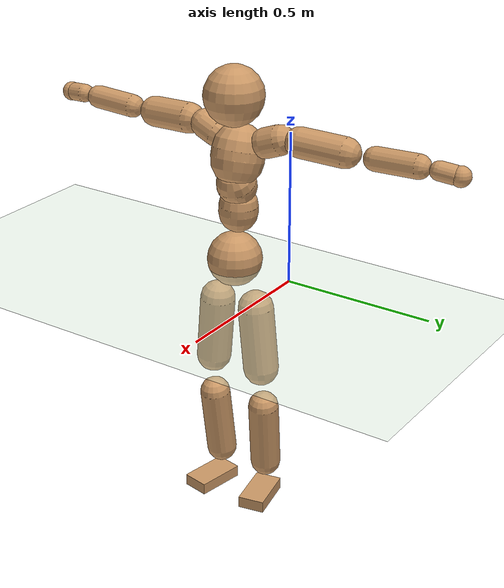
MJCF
<mujoco model="humanoid">
  <compiler coordinate="local"/>
  <default>
    <joint damping="0.0" armature="0.01" stiffness="0.0" limited="true"/>
    <geom conaffinity="1" condim="3" contype="7" margin="0.001" rgba="0.8 0.6 .4 1"/>
  </default>
  <asset>
    <texture type="skybox" builtin="gradient" rgb1=".4 .5 .6" rgb2="0 0 0" width="100" height="100"/>
    <texture builtin="flat" height="1278" mark="cross" markrgb="1 1 1" name="texgeom" random="0.01" rgb1="0.8 0.6 0.4" rgb2="0.8 0.6 0.4" type="cube" width="127"/>
    <texture builtin="checker" height="100" name="texplane" rgb1="0 0 0" rgb2="0.8 0.8 0.8" type="2d" width="100"/>
    <material name="MatPlane" reflectance="0.5" shininess="1" specular="1" texrepeat="60 60" texture="texplane"/>
    <material name="geom" texture="texgeom" texuniform="true"/>
  </asset>
  <worldbody>
    <light cutoff="100" diffuse="1 1 1" dir="-0 0 -1.3" directional="true" exponent="1" pos="0 0 1.3" specular=".1 .1 .1"/>
    <geom conaffinity="1" condim="3" name="floor" pos="0 0 0" rgba="0.8 0.9 0.8 1" size="100 100 .2" type="plane" material="MatPlane"/>
    <body name="Pelvis" pos="-0.0013 -0.2101 0.0272">
      <freejoint name="Pelvis"/>
      <geom type="sphere" contype="1" conaffinity="1" density="500" size="0.0917" pos="0.0000 0.0000 0.0000" name="Pelvis"/>
      <body name="L_Hip" pos="-0.0082 0.0698 -0.0897">
        <joint name="L_Hip_x" type="hinge" pos="0 0 0" axis="1 0 0" stiffness="800" damping="80" armature="0.02" range="-180.0000 180.0000"/>
        <joint name="L_Hip_y" type="hinge" pos="0 0 0" axis="0 1 0" stiffness="800" damping="80" armature="0.02" range="-180.0000 180.0000"/>
        <joint name="L_Hip_z" type="hinge" pos="0 0 0" axis="0 0 1" stiffness="800" damping="80" armature="0.02" range="-180.0000 180.0000"/>
        <geom type="capsule" contype="1" conaffinity="1" density="500" fromto="-0.0013 0.0064 -0.0742 -0.0052 0.0257 -0.2970" size="0.0598" name="L_Hip"/>
        <body name="L_Knee" pos="-0.0065 0.0321 -0.3712">
          <joint name="L_Knee_x" type="hinge" pos="0 0 0" axis="1 0 0" stiffness="800" damping="80" armature="0.02" range="-180.0000 180.0000"/>
          <joint name="L_Knee_y" type="hinge" pos="0 0 0" axis="0 1 0" stiffness="800" damping="80" armature="0.02" range="-180.0000 180.0000"/>
          <joint name="L_Knee_z" type="hinge" pos="0 0 0" axis="0 0 1" stiffness="800" damping="80" armature="0.02" range="-180.0000 180.0000"/>
          <geom type="capsule" contype="1" conaffinity="1" density="500" fromto="-0.0086 -0.0024 -0.0786 -0.0345 -0.0095 -0.3145" size="0.0521" name="L_Knee"/>
          <body name="L_Ankle" pos="-0.0431 -0.0119 -0.3931">
            <joint name="L_Ankle_x" type="hinge" pos="0 0 0" axis="1 0 0" stiffness="800" damping="80" armature="0.02" range="-180.0000 180.0000"/>
            <joint name="L_Ankle_y" type="hinge" pos="0 0 0" axis="0 1 0" stiffness="800" damping="80" armature="0.02" range="-180.0000 180.0000"/>
            <joint name="L_Ankle_z" type="hinge" pos="0 0 0" axis="0 0 1" stiffness="800" damping="80" armature="0.02" range="-180.0000 180.0000"/>
            <geom type="box" contype="1" conaffinity="1" density="500" pos="0.0579 0.0116 -0.0280" size="0.0826 0.0453 0.0204" quat="0.9951 0.0000 0.0000 0.0986" name="L_Ankle"/>
            <body name="L_Toe" pos="0.1158 0.0232 -0.056">
              <joint name="L_Toe_x" type="hinge" pos="0 0 0" axis="1 0 0" stiffness="500" damping="50" armature="0.02" range="-180.0000 180.0000"/>
              <joint name="L_Toe_y" type="hinge" pos="0 0 0" axis="0 1 0" stiffness="500" damping="50" armature="0.02" range="-180.0000 180.0000"/>
              <joint name="L_Toe_z" type="hinge" pos="0 0 0" axis="0 0 1" stiffness="500" damping="50" armature="0.02" range="-180.0000 180.0000"/>
              <geom type="box" contype="1" conaffinity="1" density="500" pos="0.0000 0.0000 0.0273" size="0.0009 0.0023 0.001" quat="0.9945 0.0000 0.0000 0.1051" name="L_Toe"/>
            </body>
          </body>
        </body>
      </body>
      <body name="R_Hip" pos="-0.0046 -0.0675 -0.0892">
        <joint name="R_Hip_x" type="hinge" pos="0 0 0" axis="1 0 0" stiffness="800" damping="80" armature="0.02" range="-180.0000 180.0000"/>
        <joint name="R_Hip_y" type="hinge" pos="0 0 0" axis="0 1 0" stiffness="800" damping="80" armature="0.02" range="-180.0000 180.0000"/>
        <joint name="R_Hip_z" type="hinge" pos="0 0 0" axis="0 0 1" stiffness="800" damping="80" armature="0.02" range="-180.0000 180.0000"/>
        <geom type="capsule" contype="1" conaffinity="1" density="500" fromto="-0.0018 -0.0076 -0.0755 -0.0071 -0.0302 -0.3019" size="0.0591" name="R_Hip"/>
        <body name="R_Knee" pos="-0.0089 -0.0378 -0.3774">
          <joint name="R_Knee_x" type="hinge" pos="0 0 0" axis="1 0 0" stiffness="800" damping="80" armature="0.02" range="-180.0000 180.0000"/>
          <joint name="R_Knee_y" type="hinge" pos="0 0 0" axis="0 1 0" stiffness="800" damping="80" armature="0.02" range="-180.0000 180.0000"/>
          <joint name="R_Knee_z" type="hinge" pos="0 0 0" axis="0 0 1" stiffness="800" damping="80" armature="0.02" range="-180.0000 180.0000"/>
          <geom type="capsule" contype="1" conaffinity="1" density="500" fromto="-0.0083 0.0029 -0.0787 -0.0331 0.0116 -0.3146" size="0.0523" name="R_Knee"/>
          <body name="R_Ankle" pos="-0.0414 0.0145 -0.3933">
            <joint name="R_Ankle_x" type="hinge" pos="0 0 0" axis="1 0 0" stiffness="800" damping="80" armature="0.02" range="-180.0000 180.0000"/>
            <joint name="R_Ankle_y" type="hinge" pos="0 0 0" axis="0 1 0" stiffness="800" damping="80" armature="0.02" range="-180.0000 180.0000"/>
            <joint name="R_Ankle_z" type="hinge" pos="0 0 0" axis="0 0 1" stiffness="800" damping="80" armature="0.02" range="-180.0000 180.0000"/>
            <geom type="box" contype="1" conaffinity="1" density="500" pos="0.0596 -0.0109 -0.0236" size="0.084 0.0462 0.02" quat="0.9959 0.0000 0.0000 -0.0904" name="R_Ankle"/>
            <body name="R_Toe" pos="0.1193 -0.0218 -0.0472">
              <joint name="R_Toe_x" type="hinge" pos="0 0 0" axis="1 0 0" stiffness="500" damping="50" armature="0.02" range="-180.0000 180.0000"/>
              <joint name="R_Toe_y" type="hinge" pos="0 0 0" axis="0 1 0" stiffness="500" damping="50" armature="0.02" range="-180.0000 180.0000"/>
              <joint name="R_Toe_z" type="hinge" pos="0 0 0" axis="0 0 1" stiffness="500" damping="50" armature="0.02" range="-180.0000 180.0000"/>
              <geom type="box" contype="1" conaffinity="1" density="500" pos="0.0000 0.0000 0.0257" size="0.0009 0.0023 0.0011" quat="0.9967 0.0000 0.0000 -0.0810" name="R_Toe"/>
            </body>
          </body>
        </body>
      </body>
      <body name="Torso" pos="-0.0218 -0.0026 0.1036">
        <joint name="Torso_x" type="hinge" pos="0 0 0" axis="1 0 0" stiffness="1000" damping="100" armature="0.02" range="-180.0000 180.0000"/>
        <joint name="Torso_y" type="hinge" pos="0 0 0" axis="0 1 0" stiffness="1000" damping="100" armature="0.02" range="-180.0000 180.0000"/>
        <joint name="Torso_z" type="hinge" pos="0 0 0" axis="0 0 1" stiffness="1000" damping="100" armature="0.02" range="-180.0000 180.0000"/>
        <geom type="capsule" contype="1" conaffinity="1" density="500" fromto="-0.0007 0.0022 0.0765 -0.0005 0.0015 0.0510" size="0.064914" name="Torso"/>
        <body name="Spine" pos="-0.0012 0.0037 0.1275">
          <joint name="Spine_x" type="hinge" pos="0 0 0" axis="1 0 0" stiffness="1000" damping="100" armature="0.02" range="-180.0000 180.0000"/>
          <joint name="Spine_y" type="hinge" pos="0 0 0" axis="0 1 0" stiffness="1000" damping="100" armature="0.02" range="-180.0000 180.0000"/>
          <joint name="Spine_z" type="hinge" pos="0 0 0" axis="0 0 1" stiffness="1000" damping="100" armature="0.02" range="-180.0000 180.0000"/>
          <geom type="capsule" contype="1" conaffinity="1" density="500" fromto="0.0165 0.0013 0.0295 0.0110 0.0009 0.0197" size="0.065751" name="Spine"/>
          <body name="Chest" pos="0.0275 0.0021 0.0492">
            <joint name="Chest_x" type="hinge" pos="0 0 0" axis="1 0 0" stiffness="1000" damping="100" armature="0.02" range="-180.0000 180.0000"/>
            <joint name="Chest_y" type="hinge" pos="0 0 0" axis="0 1 0" stiffness="1000" damping="100" armature="0.02" range="-180.0000 180.0000"/>
            <joint name="Chest_z" type="hinge" pos="0 0 0" axis="0 0 1" stiffness="1000" damping="100" armature="0.02" range="-180.0000 180.0000"/>
            <geom type="capsule" contype="1" conaffinity="1" density="500" fromto="-0.0257 -0.0009 0.0888 -0.0172 -0.0006 0.0592" size="0.087606" name="Chest"/>
            <body name="Neck" pos="-0.0491 -0.0027 0.2097">
              <joint name="Neck_x" type="hinge" pos="0 0 0" axis="1 0 0" stiffness="500" damping="50" armature="0.02" range="-180.0000 180.0000"/>
              <joint name="Neck_y" type="hinge" pos="0 0 0" axis="0 1 0" stiffness="500" damping="50" armature="0.02" range="-180.0000 180.0000"/>
              <joint name="Neck_z" type="hinge" pos="0 0 0" axis="0 0 1" stiffness="500" damping="50" armature="0.02" range="-180.0000 180.0000"/>
              <geom type="capsule" contype="1" conaffinity="1" density="500" fromto="0.0102 0.0007 0.0127 0.0407 0.0028 0.0508" size="0.038223" name="Neck"/>
              <body name="Head" pos="0.0509 0.0035 0.0635">
                <joint name="Head_x" type="hinge" pos="0 0 0" axis="1 0 0" stiffness="500" damping="50" armature="0.02" range="-180.0000 180.0000"/>
                <joint name="Head_y" type="hinge" pos="0 0 0" axis="0 1 0" stiffness="500" damping="50" armature="0.02" range="-180.0000 180.0000"/>
                <joint name="Head_z" type="hinge" pos="0 0 0" axis="0 0 1" stiffness="500" damping="50" armature="0.02" range="-180.0000 180.0000"/>
                <geom type="sphere" contype="1" conaffinity="1" density="500" size="0.0982" pos="0.0000 0.0000 0.0000" name="Head"/>
              </body>
            </body>
            <body name="L_Thorax" pos="-0.0377 0.0746 0.1181">
              <joint name="L_Thorax_x" type="hinge" pos="0 0 0" axis="1 0 0" stiffness="500" damping="50" armature="0.02" range="-180.0000 180.0000"/>
              <joint name="L_Thorax_y" type="hinge" pos="0 0 0" axis="0 1 0" stiffness="500" damping="50" armature="0.02" range="-180.0000 180.0000"/>
              <joint name="L_Thorax_z" type="hinge" pos="0 0 0" axis="0 0 1" stiffness="500" damping="50" armature="0.02" range="-180.0000 180.0000"/>
              <geom type="capsule" contype="1" conaffinity="1" density="500" fromto="-0.0014 0.0169 0.0063 -0.0056 0.0676 0.0252" size="0.0494" name="L_Thorax"/>
              <body name="L_Shoulder" pos="-0.007 0.0846 0.0315">
                <joint name="L_Shoulder_x" type="hinge" pos="0 0 0" axis="1 0 0" stiffness="500" damping="50" armature="0.02" range="-720.0000 720.0000"/>
                <joint name="L_Shoulder_y" type="hinge" pos="0 0 0" axis="0 1 0" stiffness="500" damping="50" armature="0.02" range="-720.0000 720.0000"/>
                <joint name="L_Shoulder_z" type="hinge" pos="0 0 0" axis="0 0 1" stiffness="500" damping="50" armature="0.02" range="-720.0000 720.0000"/>
                <geom type="capsule" contype="1" conaffinity="1" density="500" fromto="-0.0055 0.0512 -0.0025 -0.0221 0.2050 -0.0101" size="0.0491" name="L_Shoulder"/>
                <body name="L_Elbow" pos="-0.0277 0.2562 -0.0126">
                  <joint name="L_Elbow_x" type="hinge" pos="0 0 0" axis="1 0 0" stiffness="500" damping="50" armature="0.02" range="-720.0000 720.0000"/>
                  <joint name="L_Elbow_y" type="hinge" pos="0 0 0" axis="0 1 0" stiffness="500" damping="50" armature="0.02" range="-720.0000 720.0000"/>
                  <joint name="L_Elbow_z" type="hinge" pos="0 0 0" axis="0 0 1" stiffness="500" damping="50" armature="0.02" range="-720.0000 720.0000"/>
                  <geom type="capsule" contype="1" conaffinity="1" density="500" fromto="-0.0001 0.0485 0.0019 -0.0003 0.1938 0.0075" size="0.0383" name="L_Elbow"/>
                  <body name="L_Wrist" pos="-0.0004 0.2423 0.0094">
                    <joint name="L_Wrist_x" type="hinge" pos="0 0 0" axis="1 0 0" stiffness="300" damping="30" armature="0.02" range="-180.0000 180.0000"/>
                    <joint name="L_Wrist_y" type="hinge" pos="0 0 0" axis="0 1 0" stiffness="300" damping="30" armature="0.02" range="-180.0000 180.0000"/>
                    <joint name="L_Wrist_z" type="hinge" pos="0 0 0" axis="0 0 1" stiffness="300" damping="30" armature="0.02" range="-180.0000 180.0000"/>
                    <geom type="capsule" contype="1" conaffinity="1" density="500" fromto="-0.0027 0.0161 -0.0020 -0.0107 0.0644 -0.0078" size="0.0303" name="L_Wrist"/>
                    <body name="L_Hand" pos="-0.0134 0.0805 -0.0098">
                      <joint name="L_Hand_x" type="hinge" pos="0 0 0" axis="1 0 0" stiffness="300" damping="30" armature="0.02" range="-180.0000 180.0000"/>
                      <joint name="L_Hand_y" type="hinge" pos="0 0 0" axis="0 1 0" stiffness="300" damping="30" armature="0.02" range="-180.0000 180.0000"/>
                      <joint name="L_Hand_z" type="hinge" pos="0 0 0" axis="0 0 1" stiffness="300" damping="30" armature="0.02" range="-180.0000 180.0000"/>
                      <geom type="sphere" contype="1" conaffinity="1" density="500" size="0.0324" pos="0.0000 0.0000 0.0000" name="L_Hand"/>
                    </body>
                  </body>
                </body>
              </body>
            </body>
            <body name="R_Thorax" pos="-0.0419 -0.0764 0.1162">
              <joint name="R_Thorax_x" type="hinge" pos="0 0 0" axis="1 0 0" stiffness="500" damping="50" armature="0.02" range="-180.0000 180.0000"/>
              <joint name="R_Thorax_y" type="hinge" pos="0 0 0" axis="0 1 0" stiffness="500" damping="50" armature="0.02" range="-180.0000 180.0000"/>
              <joint name="R_Thorax_z" type="hinge" pos="0 0 0" axis="0 0 1" stiffness="500" damping="50" armature="0.02" range="-180.0000 180.0000"/>
              <geom type="capsule" contype="1" conaffinity="1" density="500" fromto="-0.0018 -0.0176 0.0065 -0.0072 -0.0703 0.0260" size="0.0484" name="R_Thorax"/>
              <body name="R_Shoulder" pos="-0.009 -0.0878 0.0324">
                <joint name="R_Shoulder_x" type="hinge" pos="0 0 0" axis="1 0 0" stiffness="500" damping="50" armature="0.02" range="-720.0000 720.0000"/>
                <joint name="R_Shoulder_y" type="hinge" pos="0 0 0" axis="0 1 0" stiffness="500" damping="50" armature="0.02" range="-720.0000 720.0000"/>
                <joint name="R_Shoulder_z" type="hinge" pos="0 0 0" axis="0 0 1" stiffness="500" damping="50" armature="0.02" range="-720.0000 720.0000"/>
                <geom type="capsule" contype="1" conaffinity="1" density="500" fromto="-0.0040 -0.0498 -0.0027 -0.0160 -0.1993 -0.0107" size="0.0505" name="R_Shoulder"/>
                <body name="R_Elbow" pos="-0.02 -0.2492 -0.0134">
                  <joint name="R_Elbow_x" type="hinge" pos="0 0 0" axis="1 0 0" stiffness="500" damping="50" armature="0.02" range="-720.0000 720.0000"/>
                  <joint name="R_Elbow_y" type="hinge" pos="0 0 0" axis="0 1 0" stiffness="500" damping="50" armature="0.02" range="-720.0000 720.0000"/>
                  <joint name="R_Elbow_z" type="hinge" pos="0 0 0" axis="0 0 1" stiffness="500" damping="50" armature="0.02" range="-720.0000 720.0000"/>
                  <geom type="capsule" contype="1" conaffinity="1" density="500" fromto="-0.0008 -0.0498 0.0018 -0.0032 -0.1992 0.0072" size="0.0385" name="R_Elbow"/>
                  <body name="R_Wrist" pos="-0.004 -0.249 0.009">
                    <joint name="R_Wrist_x" type="hinge" pos="0 0 0" axis="1 0 0" stiffness="300" damping="30" armature="0.02" range="-180.0000 180.0000"/>
                    <joint name="R_Wrist_y" type="hinge" pos="0 0 0" axis="0 1 0" stiffness="300" damping="30" armature="0.02" range="-180.0000 180.0000"/>
                    <joint name="R_Wrist_z" type="hinge" pos="0 0 0" axis="0 0 1" stiffness="300" damping="30" armature="0.02" range="-180.0000 180.0000"/>
                    <geom type="capsule" contype="1" conaffinity="1" density="500" fromto="-0.0021 -0.0162 -0.0015 -0.0084 -0.0648 -0.0058" size="0.031" name="R_Wrist"/>
                    <body name="R_Hand" pos="-0.0105 -0.081 -0.0073">
                      <joint name="R_Hand_x" type="hinge" pos="0 0 0" axis="1 0 0" stiffness="300" damping="30" armature="0.02" range="-180.0000 180.0000"/>
                      <joint name="R_Hand_y" type="hinge" pos="0 0 0" axis="0 1 0" stiffness="300" damping="30" armature="0.02" range="-180.0000 180.0000"/>
                      <joint name="R_Hand_z" type="hinge" pos="0 0 0" axis="0 0 1" stiffness="300" damping="30" armature="0.02" range="-180.0000 180.0000"/>
                      <geom type="sphere" contype="1" conaffinity="1" density="500" size="0.0325" pos="0.0000 0.0000 0.0000" name="R_Hand"/>
                    </body>
                  </body>
                </body>
              </body>
            </body>
          </body>
        </body>
      </body>
    </body>
  </worldbody>
  <actuator>
    <motor name="L_Hip_x" joint="L_Hip_x" gear="500"/>
    <motor name="L_Hip_y" joint="L_Hip_y" gear="500"/>
    <motor name="L_Hip_z" joint="L_Hip_z" gear="500"/>
    <motor name="L_Knee_x" joint="L_Knee_x" gear="500"/>
    <motor name="L_Knee_y" joint="L_Knee_y" gear="500"/>
    <motor name="L_Knee_z" joint="L_Knee_z" gear="500"/>
    <motor name="L_Ankle_x" joint="L_Ankle_x" gear="500"/>
    <motor name="L_Ankle_y" joint="L_Ankle_y" gear="500"/>
    <motor name="L_Ankle_z" joint="L_Ankle_z" gear="500"/>
    <motor name="L_Toe_x" joint="L_Toe_x" gear="500"/>
    <motor name="L_Toe_y" joint="L_Toe_y" gear="500"/>
    <motor name="L_Toe_z" joint="L_Toe_z" gear="500"/>
    <motor name="R_Hip_x" joint="R_Hip_x" gear="500"/>
    <motor name="R_Hip_y" joint="R_Hip_y" gear="500"/>
    <motor name="R_Hip_z" joint="R_Hip_z" gear="500"/>
    <motor name="R_Knee_x" joint="R_Knee_x" gear="500"/>
    <motor name="R_Knee_y" joint="R_Knee_y" gear="500"/>
    <motor name="R_Knee_z" joint="R_Knee_z" gear="500"/>
    <motor name="R_Ankle_x" joint="R_Ankle_x" gear="500"/>
    <motor name="R_Ankle_y" joint="R_Ankle_y" gear="500"/>
    <motor name="R_Ankle_z" joint="R_Ankle_z" gear="500"/>
    <motor name="R_Toe_x" joint="R_Toe_x" gear="500"/>
    <motor name="R_Toe_y" joint="R_Toe_y" gear="500"/>
    <motor name="R_Toe_z" joint="R_Toe_z" gear="500"/>
    <motor name="Torso_x" joint="Torso_x" gear="500"/>
    <motor name="Torso_y" joint="Torso_y" gear="500"/>
    <motor name="Torso_z" joint="Torso_z" gear="500"/>
    <motor name="Spine_x" joint="Spine_x" gear="500"/>
    <motor name="Spine_y" joint="Spine_y" gear="500"/>
    <motor name="Spine_z" joint="Spine_z" gear="500"/>
    <motor name="Chest_x" joint="Chest_x" gear="500"/>
    <motor name="Chest_y" joint="Chest_y" gear="500"/>
    <motor name="Chest_z" joint="Chest_z" gear="500"/>
    <motor name="Neck_x" joint="Neck_x" gear="500"/>
    <motor name="Neck_y" joint="Neck_y" gear="500"/>
    <motor name="Neck_z" joint="Neck_z" gear="500"/>
    <motor name="Head_x" joint="Head_x" gear="500"/>
    <motor name="Head_y" joint="Head_y" gear="500"/>
    <motor name="Head_z" joint="Head_z" gear="500"/>
    <motor name="L_Thorax_x" joint="L_Thorax_x" gear="500"/>
    <motor name="L_Thorax_y" joint="L_Thorax_y" gear="500"/>
    <motor name="L_Thorax_z" joint="L_Thorax_z" gear="500"/>
    <motor name="L_Shoulder_x" joint="L_Shoulder_x" gear="500"/>
    <motor name="L_Shoulder_y" joint="L_Shoulder_y" gear="500"/>
    <motor name="L_Shoulder_z" joint="L_Shoulder_z" gear="500"/>
    <motor name="L_Elbow_x" joint="L_Elbow_x" gear="500"/>
    <motor name="L_Elbow_y" joint="L_Elbow_y" gear="500"/>
    <motor name="L_Elbow_z" joint="L_Elbow_z" gear="500"/>
    <motor name="L_Wrist_x" joint="L_Wrist_x" gear="500"/>
    <motor name="L_Wrist_y" joint="L_Wrist_y" gear="500"/>
    <motor name="L_Wrist_z" joint="L_Wrist_z" gear="500"/>
    <motor name="L_Hand_x" joint="L_Hand_x" gear="500"/>
    <motor name="L_Hand_y" joint="L_Hand_y" gear="500"/>
    <motor name="L_Hand_z" joint="L_Hand_z" gear="500"/>
    <motor name="R_Thorax_x" joint="R_Thorax_x" gear="500"/>
    <motor name="R_Thorax_y" joint="R_Thorax_y" gear="500"/>
    <motor name="R_Thorax_z" joint="R_Thorax_z" gear="500"/>
    <motor name="R_Shoulder_x" joint="R_Shoulder_x" gear="500"/>
    <motor name="R_Shoulder_y" joint="R_Shoulder_y" gear="500"/>
    <motor name="R_Shoulder_z" joint="R_Shoulder_z" gear="500"/>
    <motor name="R_Elbow_x" joint="R_Elbow_x" gear="500"/>
    <motor name="R_Elbow_y" joint="R_Elbow_y" gear="500"/>
    <motor name="R_Elbow_z" joint="R_Elbow_z" gear="500"/>
    <motor name="R_Wrist_x" joint="R_Wrist_x" gear="500"/>
    <motor name="R_Wrist_y" joint="R_Wrist_y" gear="500"/>
    <motor name="R_Wrist_z" joint="R_Wrist_z" gear="500"/>
    <motor name="R_Hand_x" joint="R_Hand_x" gear="500"/>
    <motor name="R_Hand_y" joint="R_Hand_y" gear="500"/>
    <motor name="R_Hand_z" joint="R_Hand_z" gear="500"/>
  </actuator>
  <contact>
    <exclude body1="Torso" body2="Chest"/>
    <exclude body1="Head" body2="Chest"/>
    <exclude body1="R_Knee" body2="R_Toe"/>
    <exclude body1="R_Knee" body2="L_Ankle"/>
    <exclude body1="R_Knee" body2="L_Toe"/>
    <exclude body1="L_Knee" body2="L_Toe"/>
    <exclude body1="L_Knee" body2="R_Ankle"/>
    <exclude body1="L_Knee" body2="R_Toe"/>
    <exclude body1="L_Shoulder" body2="Chest"/>
    <exclude body1="R_Shoulder" body2="Chest"/>
  </contact>
  <sensor/>
  <size njmax="700" nconmax="700"/>
</mujoco>
